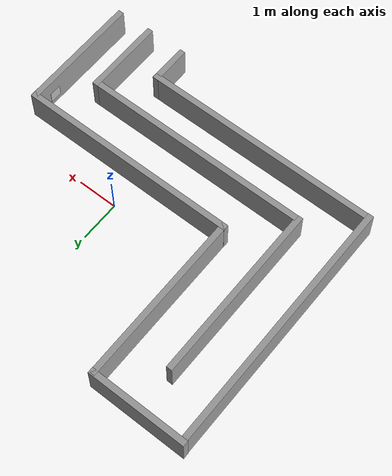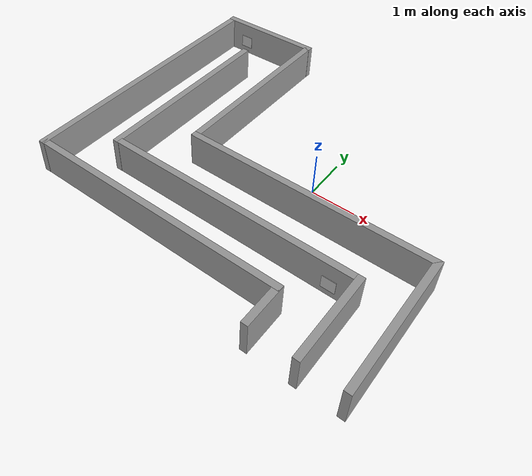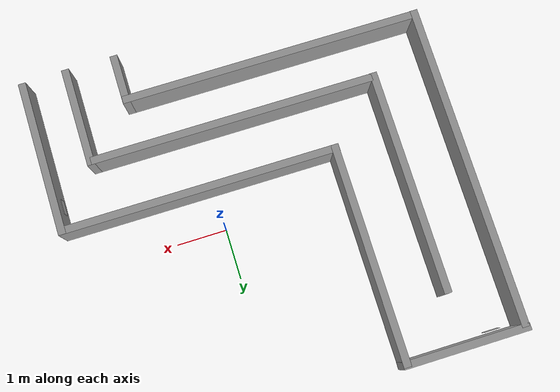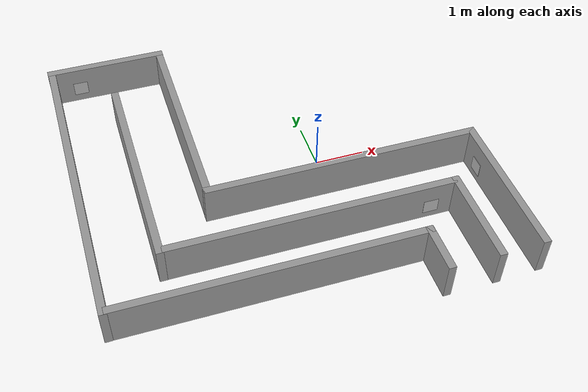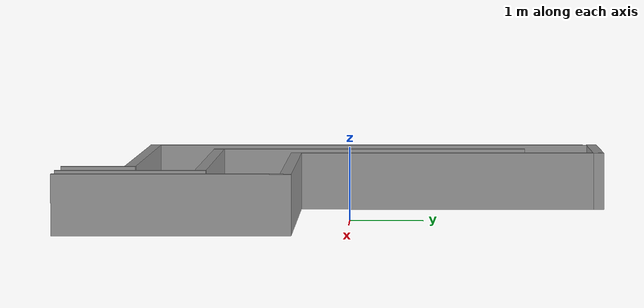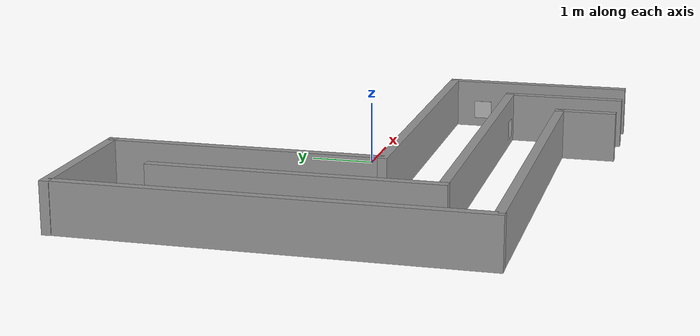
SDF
<?xml version='1.0'?>
<sdf version='1.7'>
  <model name='maze'>
    <link name='sign_left_turn'>
      <pose>1.6 -2.027 0.3 0 -0 0</pose>
      <self_collide>0</self_collide>
      <enable_wind>0</enable_wind>
      <kinematic>0</kinematic>
      <visual name='sign_left_turn'>
        <pose>0 0 0 0 -0 0</pose>
        <geometry>
          <box>
            <size>0.3 0.01 0.3</size>
          </box>
        </geometry>
        <material>
          <script>
            <uri>model://maze/materials/scripts</uri>
            <uri>model://maze/materials/textures</uri>
            <name>Maze/left_turn</name>
          </script>
          <shader type='pixel'/>
        </material>
        <transparency>0</transparency>
        <cast_shadows>1</cast_shadows>
      </visual>
    </link>
    <link name='Wall_0'>
      <pose>1.125 -3.35483 0 0 0 -1.5708</pose>
      <self_collide>0</self_collide>
      <enable_wind>0</enable_wind>
      <kinematic>0</kinematic>
      <gravity>1</gravity>
      <inertial>
        <mass>1</mass>
        <pose>0 0 0 0 -0 0</pose>
        <inertia>
          <ixx>1</ixx>
          <ixy>0</ixy>
          <ixz>0</ixz>
          <iyy>1</iyy>
          <iyz>0</iyz>
          <izz>1</izz>
        </inertia>
      </inertial>
      <visual name='Wall_0_Visual'>
        <pose>0 0 0.4 0 -0 0</pose>
        <geometry>
          <box>
            <size>1 0.15 0.8</size>
          </box>
        </geometry>
        <material>
          <script>
            <uri>file://media/materials/scripts/gazebo.material</uri>
            <name>Gazebo/Grey</name>
          </script>
          <ambient>0.1 0.1 0.1 1</ambient>
          <shader type='pixel'>
            <normal_map>__default__</normal_map>
          </shader>
          <diffuse>0.1 0.1 0.1 1</diffuse>
          <specular>0.01 0.01 0.01 1</specular>
          <emissive>0 0 0 1</emissive>
        </material>
        <meta>
          <layer>0</layer>
        </meta>
        <transparency>0</transparency>
        <cast_shadows>1</cast_shadows>
      </visual>
      <collision name='Wall_0_Collision'>
        <laser_retro>0</laser_retro>
        <max_contacts>10</max_contacts>
        <pose>0 0 0.4 0 -0 0</pose>
        <geometry>
          <box>
            <size>1 0.15 0.8</size>
          </box>
        </geometry>
        <surface>
          <friction>
            <ode>
              <mu>1</mu>
              <mu2>1</mu2>
              <fdir1>0 0 0</fdir1>
              <slip1>0</slip1>
              <slip2>0</slip2>
            </ode>
            <torsional>
              <coefficient>1</coefficient>
              <patch_radius>0</patch_radius>
              <surface_radius>0</surface_radius>
              <use_patch_radius>1</use_patch_radius>
              <ode>
                <slip>0</slip>
              </ode>
            </torsional>
          </friction>
          <bounce>
            <restitution_coefficient>0</restitution_coefficient>
            <threshold>1e+06</threshold>
          </bounce>
          <contact>
            <collide_without_contact>0</collide_without_contact>
            <collide_without_contact_bitmask>1</collide_without_contact_bitmask>
            <collide_bitmask>1</collide_bitmask>
            <ode>
              <soft_cfm>0</soft_cfm>
              <soft_erp>0.2</soft_erp>
              <kp>1e+13</kp>
              <kd>1</kd>
              <max_vel>0.01</max_vel>
              <min_depth>0</min_depth>
            </ode>
            <bullet>
              <split_impulse>1</split_impulse>
              <split_impulse_penetration_threshold>-0.01</split_impulse_penetration_threshold>
              <soft_cfm>0</soft_cfm>
              <soft_erp>0.2</soft_erp>
              <kp>1e+13</kp>
              <kd>1</kd>
            </bullet>
          </contact>
        </surface>
      </collision>
    </link>
    <link name='Wall_10'>
      <pose>2.10741 -2.86181 0 0 0 -1.5708</pose>
      <self_collide>0</self_collide>
      <enable_wind>0</enable_wind>
      <kinematic>0</kinematic>
      <gravity>1</gravity>
      <inertial>
        <mass>1</mass>
        <pose>0 0 0 0 -0 0</pose>
        <inertia>
          <ixx>1</ixx>
          <ixy>0</ixy>
          <ixz>0</ixz>
          <iyy>1</iyy>
          <iyz>0</iyz>
          <izz>1</izz>
        </inertia>
      </inertial>
      <visual name='Wall_10_Visual'>
        <pose>0 0 0.4 0 -0 0</pose>
        <geometry>
          <box>
            <size>1.99221 0.15 0.8</size>
          </box>
        </geometry>
        <material>
          <script>
            <uri>file://media/materials/scripts/gazebo.material</uri>
            <name>Gazebo/Grey</name>
          </script>
          <ambient>0.1 0.1 0.1 1</ambient>
          <shader type='pixel'>
            <normal_map>__default__</normal_map>
          </shader>
          <diffuse>0.1 0.1 0.1 1</diffuse>
          <specular>0.01 0.01 0.01 1</specular>
          <emissive>0 0 0 1</emissive>
        </material>
        <meta>
          <layer>0</layer>
        </meta>
        <transparency>0</transparency>
        <cast_shadows>1</cast_shadows>
      </visual>
      <collision name='Wall_10_Collision'>
        <laser_retro>0</laser_retro>
        <max_contacts>10</max_contacts>
        <pose>0 0 0.4 0 -0 0</pose>
        <geometry>
          <box>
            <size>1.99221 0.15 0.8</size>
          </box>
        </geometry>
        <surface>
          <friction>
            <ode>
              <mu>1</mu>
              <mu2>1</mu2>
              <fdir1>0 0 0</fdir1>
              <slip1>0</slip1>
              <slip2>0</slip2>
            </ode>
            <torsional>
              <coefficient>1</coefficient>
              <patch_radius>0</patch_radius>
              <surface_radius>0</surface_radius>
              <use_patch_radius>1</use_patch_radius>
              <ode>
                <slip>0</slip>
              </ode>
            </torsional>
          </friction>
          <bounce>
            <restitution_coefficient>0</restitution_coefficient>
            <threshold>1e+06</threshold>
          </bounce>
          <contact>
            <collide_without_contact>0</collide_without_contact>
            <collide_without_contact_bitmask>1</collide_without_contact_bitmask>
            <collide_bitmask>1</collide_bitmask>
            <ode>
              <soft_cfm>0</soft_cfm>
              <soft_erp>0.2</soft_erp>
              <kp>1e+13</kp>
              <kd>1</kd>
              <max_vel>0.01</max_vel>
              <min_depth>0</min_depth>
            </ode>
            <bullet>
              <split_impulse>1</split_impulse>
              <split_impulse_penetration_threshold>-0.01</split_impulse_penetration_threshold>
              <soft_cfm>0</soft_cfm>
              <soft_erp>0.2</soft_erp>
              <kp>1e+13</kp>
              <kd>1</kd>
            </bullet>
          </contact>
        </surface>
      </collision>
    </link>
    <link name='Wall_13'>
      <pose>-3.639250 0.2305 0.4 0 -0 1.57</pose>
      <self_collide>0</self_collide>
      <enable_wind>0</enable_wind>
      <kinematic>0</kinematic>
      <gravity>1</gravity>
      <inertial>
        <mass>1</mass>
        <pose>0 0 0 0 -0 0</pose>
        <inertia>
          <ixx>1</ixx>
          <ixy>0</ixy>
          <ixz>0</ixz>
          <iyy>1</iyy>
          <iyz>0</iyz>
          <izz>1</izz>
        </inertia>
      </inertial>
      <visual name='Wall_13_Visual'>
        <pose>0 0 0 0 0 0</pose>
        <geometry>
          <box>
            <size>4.5 0.15 0.8</size>
          </box>
        </geometry>
        <material>
          <script>
            <uri>file://media/materials/scripts/gazebo.material</uri>
            <name>Gazebo/Grey</name>
          </script>
          <ambient>0.1 0.1 0.1 1</ambient>
          <shader type='pixel'>
            <normal_map>__default__</normal_map>
          </shader>
          <diffuse>0.1 0.1 0.1 1</diffuse>
          <specular>0.01 0.01 0.01 1</specular>
          <emissive>0 0 0 1</emissive>
        </material>
        <meta>
          <layer>0</layer>
        </meta>
        <transparency>0</transparency>
        <cast_shadows>1</cast_shadows>
      </visual>
      <collision name='Wall_13_Collision'>
        <laser_retro>0</laser_retro>
        <max_contacts>10</max_contacts>
        <pose>0 0 0 0 0 0</pose>
        <geometry>
          <box>
            <size>4.5 0.15 0.8</size>
          </box>
        </geometry>
        <surface>
          <friction>
            <ode>
              <mu>1</mu>
              <mu2>1</mu2>
              <fdir1>0 0 0</fdir1>
              <slip1>0</slip1>
              <slip2>0</slip2>
            </ode>
            <torsional>
              <coefficient>1</coefficient>
              <patch_radius>0</patch_radius>
              <surface_radius>0</surface_radius>
              <use_patch_radius>1</use_patch_radius>
              <ode>
                <slip>0</slip>
              </ode>
            </torsional>
          </friction>
          <bounce>
            <restitution_coefficient>0</restitution_coefficient>
            <threshold>1e+06</threshold>
          </bounce>
          <contact>
            <collide_without_contact>0</collide_without_contact>
            <collide_without_contact_bitmask>1</collide_without_contact_bitmask>
            <collide_bitmask>1</collide_bitmask>
            <ode>
              <soft_cfm>0</soft_cfm>
              <soft_erp>0.2</soft_erp>
              <kp>1e+13</kp>
              <kd>1</kd>
              <max_vel>0.01</max_vel>
              <min_depth>0</min_depth>
            </ode>
            <bullet>
              <split_impulse>1</split_impulse>
              <split_impulse_penetration_threshold>-0.01</split_impulse_penetration_threshold>
              <soft_cfm>0</soft_cfm>
              <soft_erp>0.2</soft_erp>
              <kp>1e+13</kp>
              <kd>1</kd>
            </bullet>
          </contact>
        </surface>
      </collision>
    </link>
    <link name='Wall_16'>
      <pose>-2.4761 1.33727 0.4 0 0 -1.5708</pose>
      <self_collide>0</self_collide>
      <enable_wind>0</enable_wind>
      <kinematic>0</kinematic>
      <gravity>1</gravity>
      <inertial>
        <mass>2.94508</mass>
        <pose>0 0 0 0 -0 0</pose>
        <inertia>
          <ixx>0.162593</ixx>
          <ixy>0</ixy>
          <ixz>0</ixz>
          <iyy>4.9465</iyy>
          <iyz>0</iyz>
          <izz>4.79496</izz>
        </inertia>
      </inertial>
      <visual name='Wall_16_Visual'>
        <pose>0 0 0 0 -0 0</pose>
        <geometry>
          <box>
            <size>4.41758 0.15 0.8</size>
          </box>
        </geometry>
        <material>
          <script>
            <uri>file://media/materials/scripts/gazebo.material</uri>
            <name>Gazebo/Grey</name>
          </script>
          <ambient>0.1 0.1 0.1 1</ambient>
          <shader type='pixel'>
            <normal_map>__default__</normal_map>
          </shader>
          <diffuse>0.1 0.1 0.1 1</diffuse>
          <specular>0.01 0.01 0.01 1</specular>
          <emissive>0 0 0 1</emissive>
        </material>
        <meta>
          <layer>0</layer>
        </meta>
        <transparency>0</transparency>
        <cast_shadows>1</cast_shadows>
      </visual>
      <collision name='Wall_16_Collision'>
        <laser_retro>0</laser_retro>
        <max_contacts>10</max_contacts>
        <pose>0 0 0 0 -0 0</pose>
        <geometry>
          <box>
            <size>4.41758 0.15 0.8</size>
          </box>
        </geometry>
        <surface>
          <friction>
            <ode>
              <mu>1</mu>
              <mu2>1</mu2>
              <fdir1>0 0 0</fdir1>
              <slip1>0</slip1>
              <slip2>0</slip2>
            </ode>
            <torsional>
              <coefficient>1</coefficient>
              <patch_radius>0</patch_radius>
              <surface_radius>0</surface_radius>
              <use_patch_radius>1</use_patch_radius>
              <ode>
                <slip>0</slip>
              </ode>
            </torsional>
          </friction>
          <bounce>
            <restitution_coefficient>0</restitution_coefficient>
            <threshold>1e+06</threshold>
          </bounce>
          <contact>
            <collide_without_contact>0</collide_without_contact>
            <collide_without_contact_bitmask>1</collide_without_contact_bitmask>
            <collide_bitmask>1</collide_bitmask>
            <ode>
              <soft_cfm>0</soft_cfm>
              <soft_erp>0.2</soft_erp>
              <kp>1e+13</kp>
              <kd>1</kd>
              <max_vel>0.01</max_vel>
              <min_depth>0</min_depth>
            </ode>
            <bullet>
              <split_impulse>1</split_impulse>
              <split_impulse_penetration_threshold>-0.01</split_impulse_penetration_threshold>
              <soft_cfm>0</soft_cfm>
              <soft_erp>0.2</soft_erp>
              <kp>1e+13</kp>
              <kd>1</kd>
            </bullet>
          </contact>
        </surface>
      </collision>
    </link>
    <link name='Wall_18'>
      <pose>0.2504 -0.796785 0 0 -0 0</pose>
      <self_collide>0</self_collide>
      <enable_wind>0</enable_wind>
      <kinematic>0</kinematic>
      <gravity>1</gravity>
      <inertial>
        <mass>1.31959</mass>
        <pose>0 0 0 0 -0 0</pose>
        <inertia>
          <ixx>0.0728525</ixx>
          <ixy>0</ixy>
          <ixz>0</ixz>
          <iyy>3.52912</iyy>
          <iyz>0</iyz>
          <izz>3.46121</izz>
        </inertia>
      </inertial>
      <visual name='Wall_18_Visual'>
        <pose>0 0 0.4 0 -0 0</pose>
        <geometry>
          <box>
            <size>5.60828 0.15 0.8</size>
          </box>
        </geometry>
        <material>
          <script>
            <uri>file://media/materials/scripts/gazebo.material</uri>
            <name>Gazebo/Grey</name>
          </script>
          <ambient>0.1 0.1 0.1 1</ambient>
          <shader type='pixel'>
            <normal_map>__default__</normal_map>
          </shader>
          <diffuse>0.1 0.1 0.1 1</diffuse>
          <specular>0.01 0.01 0.01 1</specular>
          <emissive>0 0 0 1</emissive>
        </material>
        <meta>
          <layer>0</layer>
        </meta>
        <transparency>0</transparency>
        <cast_shadows>1</cast_shadows>
      </visual>
      <collision name='Wall_18_Collision'>
        <laser_retro>0</laser_retro>
        <max_contacts>10</max_contacts>
        <pose>0 0 0.4 0 -0 0</pose>
        <geometry>
          <box>
            <size>5.60828 0.15 0.8</size>
          </box>
        </geometry>
        <surface>
          <friction>
            <ode>
              <mu>1</mu>
              <mu2>1</mu2>
              <fdir1>0 0 0</fdir1>
              <slip1>0</slip1>
              <slip2>0</slip2>
            </ode>
            <torsional>
              <coefficient>1</coefficient>
              <patch_radius>0</patch_radius>
              <surface_radius>0</surface_radius>
              <use_patch_radius>1</use_patch_radius>
              <ode>
                <slip>0</slip>
              </ode>
            </torsional>
          </friction>
          <bounce>
            <restitution_coefficient>0</restitution_coefficient>
            <threshold>1e+06</threshold>
          </bounce>
          <contact>
            <collide_without_contact>0</collide_without_contact>
            <collide_without_contact_bitmask>1</collide_without_contact_bitmask>
            <collide_bitmask>1</collide_bitmask>
            <ode>
              <soft_cfm>0</soft_cfm>
              <soft_erp>0.2</soft_erp>
              <kp>1e+13</kp>
              <kd>1</kd>
              <max_vel>0.01</max_vel>
              <min_depth>0</min_depth>
            </ode>
            <bullet>
              <split_impulse>1</split_impulse>
              <split_impulse_penetration_threshold>-0.01</split_impulse_penetration_threshold>
              <soft_cfm>0</soft_cfm>
              <soft_erp>0.2</soft_erp>
              <kp>1e+13</kp>
              <kd>1</kd>
            </bullet>
          </contact>
        </surface>
      </collision>
    </link>
    <link name='Wall_2'>
      <pose>-0.925001 -2.92983 0 0 -0 3.14159</pose>
      <self_collide>0</self_collide>
      <enable_wind>0</enable_wind>
      <kinematic>0</kinematic>
      <gravity>1</gravity>
      <inertial>
        <mass>1</mass>
        <pose>0 0 0 0 -0 0</pose>
        <inertia>
          <ixx>1</ixx>
          <ixy>0</ixy>
          <ixz>0</ixz>
          <iyy>1</iyy>
          <iyz>0</iyz>
          <izz>1</izz>
        </inertia>
      </inertial>
      <visual name='Wall_2_Visual'>
        <pose>0.88 0 0.4 0 -0 0</pose>
        <geometry>
          <box>
            <size>6 0.15 0.8</size>
          </box>
        </geometry>
        <material>
          <script>
            <uri>file://media/materials/scripts/gazebo.material</uri>
            <name>Gazebo/Grey</name>
          </script>
          <ambient>0.1 0.1 0.1 1</ambient>
          <shader type='pixel'>
            <normal_map>__default__</normal_map>
          </shader>
          <diffuse>0.1 0.1 0.1 1</diffuse>
          <specular>0.01 0.01 0.01 1</specular>
          <emissive>0 0 0 1</emissive>
        </material>
        <meta>
          <layer>0</layer>
        </meta>
        <transparency>0</transparency>
        <cast_shadows>1</cast_shadows>
      </visual>
      <collision name='Wall_2_Collision'>
        <laser_retro>0</laser_retro>
        <max_contacts>10</max_contacts>
        <pose>0.88 0 0.4 0 -0 0</pose>
        <geometry>
          <box>
            <size>6 0.15 0.8</size>
          </box>
        </geometry>
        <surface>
          <friction>
            <ode>
              <mu>1</mu>
              <mu2>1</mu2>
              <fdir1>0 0 0</fdir1>
              <slip1>0</slip1>
              <slip2>0</slip2>
            </ode>
            <torsional>
              <coefficient>1</coefficient>
              <patch_radius>0</patch_radius>
              <surface_radius>0</surface_radius>
              <use_patch_radius>1</use_patch_radius>
              <ode>
                <slip>0</slip>
              </ode>
            </torsional>
          </friction>
          <bounce>
            <restitution_coefficient>0</restitution_coefficient>
            <threshold>1e+06</threshold>
          </bounce>
          <contact>
            <collide_without_contact>0</collide_without_contact>
            <collide_without_contact_bitmask>1</collide_without_contact_bitmask>
            <collide_bitmask>1</collide_bitmask>
            <ode>
              <soft_cfm>0</soft_cfm>
              <soft_erp>0.2</soft_erp>
              <kp>1e+13</kp>
              <kd>1</kd>
              <max_vel>0.01</max_vel>
              <min_depth>0</min_depth>
            </ode>
            <bullet>
              <split_impulse>1</split_impulse>
              <split_impulse_penetration_threshold>-0.01</split_impulse_penetration_threshold>
              <soft_cfm>0</soft_cfm>
              <soft_erp>0.2</soft_erp>
              <kp>1e+13</kp>
              <kd>1</kd>
            </bullet>
          </contact>
        </surface>
      </collision>
    </link>
    <link name='Wall_20'>
      <pose>2.98403 -2.27875 0 0 0 -1.5708</pose>
      <self_collide>0</self_collide>
      <enable_wind>0</enable_wind>
      <kinematic>0</kinematic>
      <gravity>1</gravity>
      <inertial>
        <mass>1.13062</mass>
        <pose>0 0 0 0 -0 0</pose>
        <inertia>
          <ixx>0.0624198</ixx>
          <ixy>0</ixy>
          <ixz>0</ixz>
          <iyy>0.971134</iyy>
          <iyz>0</iyz>
          <izz>0.912954</izz>
        </inertia>
      </inertial>
      <visual name='Wall_20_Visual'>
        <pose>0 0 0.4 0 -0 0</pose>
        <geometry>
          <box>
            <size>3.10922 0.15 0.8</size>
          </box>
        </geometry>
        <material>
          <script>
            <uri>file://media/materials/scripts/gazebo.material</uri>
            <name>Gazebo/Grey</name>
          </script>
          <ambient>0.1 0.1 0.1 1</ambient>
          <shader type='pixel'>
            <normal_map>__default__</normal_map>
          </shader>
          <diffuse>0.1 0.1 0.1 1</diffuse>
          <specular>0.01 0.01 0.01 1</specular>
          <emissive>0 0 0 1</emissive>
        </material>
        <meta>
          <layer>0</layer>
        </meta>
        <transparency>0</transparency>
        <cast_shadows>1</cast_shadows>
      </visual>
      <collision name='Wall_20_Collision'>
        <laser_retro>0</laser_retro>
        <max_contacts>10</max_contacts>
        <pose>0 0 0.4 0 -0 0</pose>
        <geometry>
          <box>
            <size>3.10922 0.15 0.8</size>
          </box>
        </geometry>
        <surface>
          <friction>
            <ode>
              <mu>1</mu>
              <mu2>1</mu2>
              <fdir1>0 0 0</fdir1>
              <slip1>0</slip1>
              <slip2>0</slip2>
            </ode>
            <torsional>
              <coefficient>1</coefficient>
              <patch_radius>0</patch_radius>
              <surface_radius>0</surface_radius>
              <use_patch_radius>1</use_patch_radius>
              <ode>
                <slip>0</slip>
              </ode>
            </torsional>
          </friction>
          <bounce>
            <restitution_coefficient>0</restitution_coefficient>
            <threshold>1e+06</threshold>
          </bounce>
          <contact>
            <collide_without_contact>0</collide_without_contact>
            <collide_without_contact_bitmask>1</collide_without_contact_bitmask>
            <collide_bitmask>1</collide_bitmask>
            <ode>
              <soft_cfm>0</soft_cfm>
              <soft_erp>0.2</soft_erp>
              <kp>1e+13</kp>
              <kd>1</kd>
              <max_vel>0.01</max_vel>
              <min_depth>0</min_depth>
            </ode>
            <bullet>
              <split_impulse>1</split_impulse>
              <split_impulse_penetration_threshold>-0.01</split_impulse_penetration_threshold>
              <soft_cfm>0</soft_cfm>
              <soft_erp>0.2</soft_erp>
              <kp>1e+13</kp>
              <kd>1</kd>
            </bullet>
          </contact>
        </surface>
      </collision>
    </link>
    <link name='Wall_7'>
      <pose>-3.648 3.5 0.4 0 -0 0</pose>
      <self_collide>0</self_collide>
      <enable_wind>0</enable_wind>
      <kinematic>0</kinematic>
      <gravity>1</gravity>
      <inertial>
        <mass>1</mass>
        <pose>0 0 0 0 -0 0</pose>
        <inertia>
          <ixx>1</ixx>
          <ixy>0</ixy>
          <ixz>0</ixz>
          <iyy>1</iyy>
          <iyz>0</iyz>
          <izz>1</izz>
        </inertia>
      </inertial>
      <visual name='Wall_7_Visual'>
        <pose>0 0 0 0 0 0</pose>
        <geometry>
          <box>
            <size>2.5 0.15 0.8</size>
          </box>
        </geometry>
        <material>
          <script>
            <uri>file://media/materials/scripts/gazebo.material</uri>
            <name>Gazebo/Grey</name>
          </script>
          <ambient>0.1 0.1 0.1 1</ambient>
          <shader type='pixel'>
            <normal_map>__default__</normal_map>
          </shader>
          <diffuse>0.1 0.1 0.1 1</diffuse>
          <specular>0.01 0.01 0.01 1</specular>
          <emissive>0 0 0 1</emissive>
        </material>
        <meta>
          <layer>0</layer>
        </meta>
        <transparency>0</transparency>
        <cast_shadows>1</cast_shadows>
      </visual>
      <collision name='Wall_7_Collision'>
        <laser_retro>0</laser_retro>
        <max_contacts>10</max_contacts>
        <pose>0 0 0 0 0 0</pose>
        <geometry>
          <box>
            <size>2.5 0.15 0.8</size>
          </box>
        </geometry>
        <surface>
          <friction>
            <ode>
              <mu>1</mu>
              <mu2>1</mu2>
              <fdir1>0 0 0</fdir1>
              <slip1>0</slip1>
              <slip2>0</slip2>
            </ode>
            <torsional>
              <coefficient>1</coefficient>
              <patch_radius>0</patch_radius>
              <surface_radius>0</surface_radius>
              <use_patch_radius>1</use_patch_radius>
              <ode>
                <slip>0</slip>
              </ode>
            </torsional>
          </friction>
          <bounce>
            <restitution_coefficient>0</restitution_coefficient>
            <threshold>1e+06</threshold>
          </bounce>
          <contact>
            <collide_without_contact>0</collide_without_contact>
            <collide_without_contact_bitmask>1</collide_without_contact_bitmask>
            <collide_bitmask>1</collide_bitmask>
            <ode>
              <soft_cfm>0</soft_cfm>
              <soft_erp>0.2</soft_erp>
              <kp>1e+13</kp>
              <kd>1</kd>
              <max_vel>0.01</max_vel>
              <min_depth>0</min_depth>
            </ode>
            <bullet>
              <split_impulse>1</split_impulse>
              <split_impulse_penetration_threshold>-0.01</split_impulse_penetration_threshold>
              <soft_cfm>0</soft_cfm>
              <soft_erp>0.2</soft_erp>
              <kp>1e+13</kp>
              <kd>1</kd>
            </bullet>
          </contact>
        </surface>
      </collision>
    </link>
    <link name='Wall_9'>
      <pose>-0.75 -1.94083 0.4 0 -0 0</pose>
      <self_collide>0</self_collide>
      <enable_wind>0</enable_wind>
      <kinematic>0</kinematic>
      <gravity>1</gravity>
      <inertial>
        <mass>1</mass>
        <pose>0 0 0 0 -0 0</pose>
        <inertia>
          <ixx>1</ixx>
          <ixy>0</ixy>
          <ixz>0</ixz>
          <iyy>1</iyy>
          <iyz>0</iyz>
          <izz>1</izz>
        </inertia>
      </inertial>
      <visual name='Wall_9_Visual'>
        <pose>0 0 0 0 -0 0</pose>
        <geometry>
          <box>
            <size>5.7 0.15 0.8</size>
          </box>
        </geometry>
        <material>
          <script>
            <uri>file://media/materials/scripts/gazebo.material</uri>
            <name>Gazebo/Grey</name>
          </script>
          <ambient>0.1 0.1 0.1 1</ambient>
          <shader type='pixel'>
            <normal_map>__default__</normal_map>
          </shader>
          <diffuse>0.1 0.1 0.1 1</diffuse>
          <specular>0.01 0.01 0.01 1</specular>
          <emissive>0 0 0 1</emissive>
        </material>
        <meta>
          <layer>0</layer>
        </meta>
        <transparency>0</transparency>
        <cast_shadows>1</cast_shadows>
      </visual>
      <collision name='Wall_9_Collision'>
        <laser_retro>0</laser_retro>
        <max_contacts>10</max_contacts>
        <pose>0 0 0 0 -0 0</pose>
        <geometry>
          <box>
            <size>5.7 0.15 0.8</size>
          </box>
        </geometry>
        <surface>
          <friction>
            <ode>
              <mu>1</mu>
              <mu2>1</mu2>
              <fdir1>0 0 0</fdir1>
              <slip1>0</slip1>
              <slip2>0</slip2>
            </ode>
            <torsional>
              <coefficient>1</coefficient>
              <patch_radius>0</patch_radius>
              <surface_radius>0</surface_radius>
              <use_patch_radius>1</use_patch_radius>
              <ode>
                <slip>0</slip>
              </ode>
            </torsional>
          </friction>
          <bounce>
            <restitution_coefficient>0</restitution_coefficient>
            <threshold>1e+06</threshold>
          </bounce>
          <contact>
            <collide_without_contact>0</collide_without_contact>
            <collide_without_contact_bitmask>1</collide_without_contact_bitmask>
            <collide_bitmask>1</collide_bitmask>
            <ode>
              <soft_cfm>0</soft_cfm>
              <soft_erp>0.2</soft_erp>
              <kp>1e+13</kp>
              <kd>1</kd>
              <max_vel>0.01</max_vel>
              <min_depth>0</min_depth>
            </ode>
            <bullet>
              <split_impulse>1</split_impulse>
              <split_impulse_penetration_threshold>-0.01</split_impulse_penetration_threshold>
              <soft_cfm>0</soft_cfm>
              <soft_erp>0.2</soft_erp>
              <kp>1e+13</kp>
              <kd>1</kd>
            </bullet>
          </contact>
        </surface>
      </collision>
    </link>
    <link name='Wall_30'>
      <pose>-4.81570 0.240502 0.4 0 -0 1.57</pose>
      <self_collide>0</self_collide>
      <enable_wind>0</enable_wind>
      <kinematic>0</kinematic>
      <gravity>1</gravity>
      <inertial>
        <mass>1</mass>
        <pose>0 0 0 0 -0 0</pose>
        <inertia>
          <ixx>1</ixx>
          <ixy>0</ixy>
          <ixz>0</ixz>
          <iyy>1</iyy>
          <iyz>0</iyz>
          <izz>1</izz>
        </inertia>
      </inertial>
      <visual name='Wall_30_Visual'>
        <pose>0 0 0 0 -0 0</pose>
        <geometry>
          <box>
            <size>6.5 0.15 0.8</size>
          </box>
        </geometry>
        <material>
          <script>
            <uri>file://media/materials/scripts/gazebo.material</uri>
            <name>Gazebo/Grey</name>
          </script>
          <ambient>0.1 0.1 0.1 1</ambient>
          <shader type='pixel'>
            <normal_map>__default__</normal_map>
          </shader>
          <diffuse>0.1 0.1 0.1 1</diffuse>
          <specular>0.01 0.01 0.01 1</specular>
          <emissive>0 0 0 1</emissive>
        </material>
        <meta>
          <layer>0</layer>
        </meta>
        <transparency>0</transparency>
        <cast_shadows>1</cast_shadows>
      </visual>
      <collision name='Wall_30_Collision'>
        <laser_retro>0</laser_retro>
        <max_contacts>10</max_contacts>
        <pose>0 0 0 0 0 0</pose>
        <geometry>
          <box>
            <size>6.5 0.15 0.8</size>
          </box>
        </geometry>
        <surface>
          <friction>
            <ode>
              <mu>1</mu>
              <mu2>1</mu2>
              <fdir1>0 0 0</fdir1>
              <slip1>0</slip1>
              <slip2>0</slip2>
            </ode>
            <torsional>
              <coefficient>1</coefficient>
              <patch_radius>0</patch_radius>
              <surface_radius>0</surface_radius>
              <use_patch_radius>1</use_patch_radius>
              <ode>
                <slip>0</slip>
              </ode>
            </torsional>
          </friction>
          <bounce>
            <restitution_coefficient>0</restitution_coefficient>
            <threshold>1e+06</threshold>
          </bounce>
          <contact>
            <collide_without_contact>0</collide_without_contact>
            <collide_without_contact_bitmask>1</collide_without_contact_bitmask>
            <collide_bitmask>1</collide_bitmask>
            <ode>
              <soft_cfm>0</soft_cfm>
              <soft_erp>0.2</soft_erp>
              <kp>1e+13</kp>
              <kd>1</kd>
              <max_vel>0.01</max_vel>
              <min_depth>0</min_depth>
            </ode>
            <bullet>
              <split_impulse>1</split_impulse>
              <split_impulse_penetration_threshold>-0.01</split_impulse_penetration_threshold>
              <soft_cfm>0</soft_cfm>
              <soft_erp>0.2</soft_erp>
              <kp>1e+13</kp>
              <kd>1</kd>
            </bullet>
          </contact>
        </surface>
      </collision>
    </link>
    <link name='sign_right_turn'>
      <pose>-4.26683 3.37455 0.355461 0 -0 0</pose>
      <self_collide>0</self_collide>
      <enable_wind>0</enable_wind>
      <kinematic>0</kinematic>
      <visual name='sign_right_turn'>
        <pose>0 0 0 0 -0 0</pose>
        <geometry>
          <box>
            <size>0.3 0.01 0.3</size>
          </box>
        </geometry>
        <material>
          <script>
            <uri>model://maze/materials/scripts</uri>
            <uri>model://maze/materials/textures</uri>
            <name>Maze/right_turn</name>
          </script>
          <shader type='pixel'/>
        </material>
        <transparency>0</transparency>
        <cast_shadows>1</cast_shadows>
      </visual>
    </link>
    <link name='sign_right_turn2'>
      <pose>2.90468 -1.32504 0.3 0 -0 1.57</pose>
      <self_collide>0</self_collide>
      <enable_wind>0</enable_wind>
      <kinematic>0</kinematic>
      <visual name='sign_right_turn2'>
        <pose>0 0 0 0 -0 0</pose>
        <geometry>
          <box>
            <size>0.3 0.01 0.3</size>
          </box>
        </geometry>
        <material>
          <script>
            <uri>model://maze/materials/scripts</uri>
            <uri>model://maze/materials/textures</uri>
            <name>Maze/right_turn</name>
          </script>
          <shader type='pixel'/>
        </material>
        <transparency>0</transparency>
        <cast_shadows>1</cast_shadows>
      </visual>
    </link>
    <static>1</static>
    <allow_auto_disable>1</allow_auto_disable>
  </model>
</sdf>
